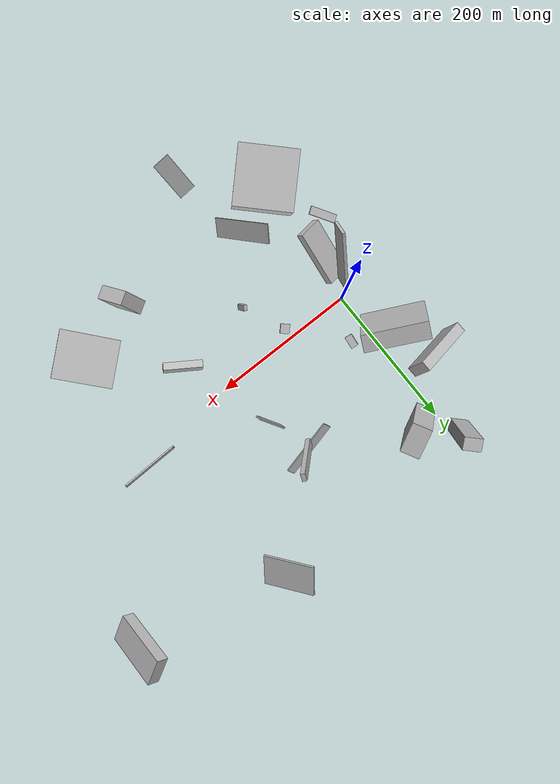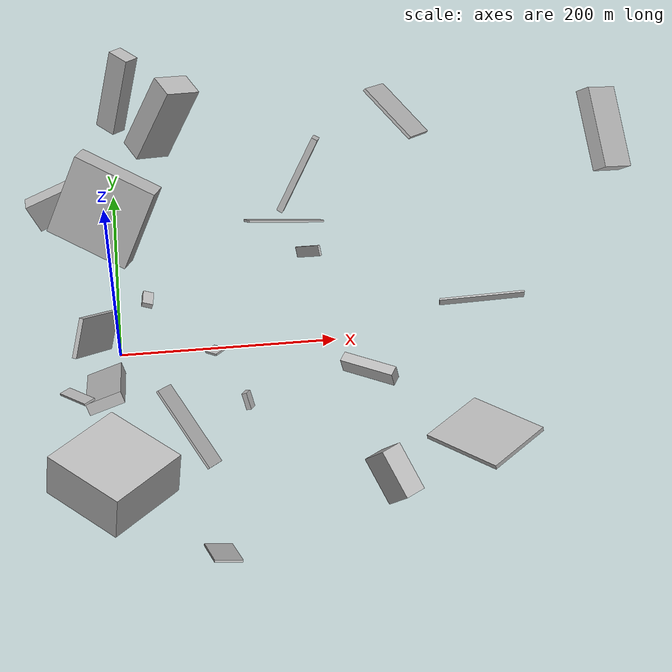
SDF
<sdf version="1.6">
 <world name="default">
  <scene>
   <sky><clouds><speed>12</speed></clouds></sky>
   <ambient>0.4 0.4 0.4 1</ambient>
   <background>0.7 0.7 0.7 1</background>
   <shadows>1</shadows>
  </scene>
  <gravity>0 0 -9.8066</gravity>
  <magnetic_field>6e-06 2.3e-05 -4.2e-05</magnetic_field>
  <physics default="0" name="default_physics" type="ode">
   <ode>
    <solver>
     <type>quick</type>
     <iters>10</iters>
     <sor>1.0</sor>
     <use_dynamic_moi_rescaling>0</use_dynamic_moi_rescaling>
    </solver>
    <constraints>
     <cfm>0</cfm>
     <erp>0.2</erp>
     <contact_max_correcting_vel>100</contact_max_correcting_vel>
     <contact_surface_layer>0.001</contact_surface_layer>
    </constraints>
   </ode>
   <max_step_size>0.004</max_step_size>
   <real_time_factor>1</real_time_factor>
   <real_time_update_rate>250</real_time_update_rate>
  </physics>
  <light name="sun" type="directional">
   <pose>0 0 10 0 0 0</pose>
   <diffuse>0.8 0.8 0.8 1</diffuse>
   <specular>0.2 0.2 0.2 1</specular>
   <attenuation>
    <range>1000</range>
    <constant>0.9</constant>
    <linear>0.01</linear>
    <quadratic>0.001</quadratic>
   </attenuation>
   <direction>-0.5 0.1 -0.9</direction>
  </light>
  <model name="building_1">
   <static>0</static>
   <pose>78.65801326372693 -169.17218586380972 50.6904636482265 -0.8711515495561991 -0.7050113568871207 0.10035059836993936</pose>
   <link name="link">
    <gravity>0</gravity>
    <pose>0 0 40.0 0 0 0</pose>
    <collision name="collision"><geometry><box><size>2 26 80</size></box></geometry></collision>
    <visual name="visual">
     <cast_shadows>0</cast_shadows>
     <geometry><box><size>2 26 80</size></box></geometry>
     <material>
      <script>
       <uri>model://HANNAS_wall/materials/scripts</uri>
       <uri>model://HANNAS_wall/materials/textures</uri>
       <name>vrc/HANNAS_wall</name>
      </script>
     </material>
    </visual>
   </link>
  </model>
  <model name="building_2">
   <static>0</static>
   <pose>36.52205086778163 186.53792571873726 78.1229824556456 0.45348529236519997 -0.08295351557890565 2.0566493371044263</pose>
   <link name="link">
    <gravity>0</gravity>
    <pose>0 0 40.0 0 0 0</pose>
    <collision name="collision"><geometry><box><size>24 38 80</size></box></geometry></collision>
    <visual name="visual">
     <cast_shadows>0</cast_shadows>
     <geometry><box><size>24 38 80</size></box></geometry>
     <material>
      <script>
       <uri>model://HANNAS_wall/materials/scripts</uri>
       <uri>model://HANNAS_wall/materials/textures</uri>
       <name>vrc/HANNAS_wall</name>
      </script>
     </material>
    </visual>
   </link>
  </model>
  <model name="building_3">
   <static>0</static>
   <pose>466.52928779418426 184.04018237341032 65.24518798850019 -2.185434489128819 0.5783529765590155 -1.4305883943112772</pose>
   <link name="link">
    <gravity>0</gravity>
    <pose>0 0 19.5 0 0 0</pose>
    <collision name="collision"><geometry><box><size>80 16 39</size></box></geometry></collision>
    <visual name="visual">
     <cast_shadows>0</cast_shadows>
     <geometry><box><size>80 16 39</size></box></geometry>
     <material>
      <script>
       <uri>model://HANNAS_wall/materials/scripts</uri>
       <uri>model://HANNAS_wall/materials/textures</uri>
       <name>vrc/HANNAS_wall</name>
      </script>
     </material>
    </visual>
   </link>
  </model>
  <model name="building_4">
   <static>0</static>
   <pose>-22.398453831123536 -45.6673128910353 63.45333462088465 -0.7401797261868652 -0.05834298420294319 -0.44885966041642716</pose>
   <link name="link">
    <gravity>0</gravity>
    <pose>0 0 18.0 0 0 0</pose>
    <collision name="collision"><geometry><box><size>4 80 36</size></box></geometry></collision>
    <visual name="visual">
     <cast_shadows>0</cast_shadows>
     <geometry><box><size>4 80 36</size></box></geometry>
     <material>
      <script>
       <uri>model://HANNAS_wall/materials/scripts</uri>
       <uri>model://HANNAS_wall/materials/textures</uri>
       <name>vrc/HANNAS_wall</name>
      </script>
     </material>
    </visual>
   </link>
  </model>
  <model name="building_5">
   <static>0</static>
   <pose>224.7429341800806 -160.07684212478478 39.15332948117189 2.1596383741854264 0.0589436808369255 0.5515207498890417</pose>
   <link name="link">
    <gravity>0</gravity>
    <pose>0 0 22.5 0 0 0</pose>
    <collision name="collision"><geometry><box><size>19 39 45</size></box></geometry></collision>
    <visual name="visual">
     <cast_shadows>0</cast_shadows>
     <geometry><box><size>19 39 45</size></box></geometry>
     <material>
      <script>
       <uri>model://HANNAS_wall/materials/scripts</uri>
       <uri>model://HANNAS_wall/materials/textures</uri>
       <name>vrc/HANNAS_wall</name>
      </script>
     </material>
    </visual>
   </link>
  </model>
  <model name="building_6">
   <static>0</static>
   <pose>378.99833104132136 21.124937877878974 20.511180200648063 1.5847260941836225 -1.404415515957115 -1.5566382732023007</pose>
   <link name="link">
    <gravity>0</gravity>
    <pose>0 0 40.0 0 0 0</pose>
    <collision name="collision"><geometry><box><size>9 2 80</size></box></geometry></collision>
    <visual name="visual">
     <cast_shadows>0</cast_shadows>
     <geometry><box><size>9 2 80</size></box></geometry>
     <material>
      <script>
       <uri>model://HANNAS_wall/materials/scripts</uri>
       <uri>model://HANNAS_wall/materials/textures</uri>
       <name>vrc/HANNAS_wall</name>
      </script>
     </material>
    </visual>
   </link>
  </model>
  <model name="building_7">
   <static>0</static>
   <pose>-35.53584545873676 -204.90873637553713 69.6181568404258 2.8779894703337416 -1.3434752725895014 1.0612239211213672</pose>
   <link name="link">
    <gravity>0</gravity>
    <pose>0 0 40.0 0 0 0</pose>
    <collision name="collision"><geometry><box><size>41 80 80</size></box></geometry></collision>
    <visual name="visual">
     <cast_shadows>0</cast_shadows>
     <geometry><box><size>41 80 80</size></box></geometry>
     <material>
      <script>
       <uri>model://HANNAS_wall/materials/scripts</uri>
       <uri>model://HANNAS_wall/materials/textures</uri>
       <name>vrc/HANNAS_wall</name>
      </script>
     </material>
    </visual>
   </link>
  </model>
  <model name="building_8">
   <static>0</static>
   <pose>293.1520866593309 251.65880309796069 43.46210689776356 0.9459045328652802 0.3626942719207734 -0.8699671119621105</pose>
   <link name="link">
    <gravity>0</gravity>
    <pose>0 0 22.0 0 0 0</pose>
    <collision name="collision"><geometry><box><size>66 3 44</size></box></geometry></collision>
    <visual name="visual">
     <cast_shadows>0</cast_shadows>
     <geometry><box><size>66 3 44</size></box></geometry>
     <material>
      <script>
       <uri>model://HANNAS_wall/materials/scripts</uri>
       <uri>model://HANNAS_wall/materials/textures</uri>
       <name>vrc/HANNAS_wall</name>
      </script>
     </material>
    </visual>
   </link>
  </model>
  <model name="building_9">
   <static>0</static>
   <pose>18.159643952959545 236.4106652243388 111.2023264764783 -0.03771227066508393 -1.2251597872295934 0.8170288547912316</pose>
   <link name="link">
    <gravity>0</gravity>
    <pose>0 0 8.0 0 0 0</pose>
    <collision name="collision"><geometry><box><size>80 22 16</size></box></geometry></collision>
    <visual name="visual">
     <cast_shadows>0</cast_shadows>
     <geometry><box><size>80 22 16</size></box></geometry>
     <material>
      <script>
       <uri>model://HANNAS_wall/materials/scripts</uri>
       <uri>model://HANNAS_wall/materials/textures</uri>
       <name>vrc/HANNAS_wall</name>
      </script>
     </material>
    </visual>
   </link>
  </model>
  <model name="building_10">
   <static>0</static>
   <pose>-30.288903416926054 129.60672442888594 62.47934887165902 -0.37518887593392647 0.1851344763983517 1.6457194667454347</pose>
   <link name="link">
    <gravity>0</gravity>
    <pose>0 0 15.5 0 0 0</pose>
    <collision name="collision"><geometry><box><size>14 80 31</size></box></geometry></collision>
    <visual name="visual">
     <cast_shadows>0</cast_shadows>
     <geometry><box><size>14 80 31</size></box></geometry>
     <material>
      <script>
       <uri>model://HANNAS_wall/materials/scripts</uri>
       <uri>model://HANNAS_wall/materials/textures</uri>
       <name>vrc/HANNAS_wall</name>
      </script>
     </material>
    </visual>
   </link>
  </model>
  <model name="building_11">
   <static>0</static>
   <pose>87.33584524398341 -14.108506737682173 13.431627969161735 0.31666289935278036 -0.239545437743842 -2.3371696861783553</pose>
   <link name="link">
    <gravity>0</gravity>
    <pose>0 0 1.0 0 0 0</pose>
    <collision name="collision"><geometry><box><size>13 13 2</size></box></geometry></collision>
    <visual name="visual">
     <cast_shadows>0</cast_shadows>
     <geometry><box><size>13 13 2</size></box></geometry>
     <material>
      <script>
       <uri>model://HANNAS_wall/materials/scripts</uri>
       <uri>model://HANNAS_wall/materials/textures</uri>
       <name>vrc/HANNAS_wall</name>
      </script>
     </material>
    </visual>
   </link>
  </model>
  <model name="building_12">
   <static>0</static>
   <pose>76.13807383490673 -236.84650320667373 29.467729759542898 0.2587386523171283 -0.8270774998869088 1.4047646393750781</pose>
   <link name="link">
    <gravity>0</gravity>
    <pose>0 0 28.5 0 0 0</pose>
    <collision name="collision"><geometry><box><size>2 24 57</size></box></geometry></collision>
    <visual name="visual">
     <cast_shadows>0</cast_shadows>
     <geometry><box><size>2 24 57</size></box></geometry>
     <material>
      <script>
       <uri>model://HANNAS_wall/materials/scripts</uri>
       <uri>model://HANNAS_wall/materials/textures</uri>
       <name>vrc/HANNAS_wall</name>
      </script>
     </material>
    </visual>
   </link>
  </model>
  <model name="building_13">
   <static>0</static>
   <pose>23.22307499309029 55.03543148553567 14.547033697019032 1.8713288514629232 0.1594106703862756 1.4855091765814745</pose>
   <link name="link">
    <gravity>0</gravity>
    <pose>0 0 5.0 0 0 0</pose>
    <collision name="collision"><geometry><box><size>17 5 10</size></box></geometry></collision>
    <visual name="visual">
     <cast_shadows>0</cast_shadows>
     <geometry><box><size>17 5 10</size></box></geometry>
     <material>
      <script>
       <uri>model://HANNAS_wall/materials/scripts</uri>
       <uri>model://HANNAS_wall/materials/textures</uri>
       <name>vrc/HANNAS_wall</name>
      </script>
     </material>
    </visual>
   </link>
  </model>
  <model name="building_14">
   <static>0</static>
   <pose>-32.317670842976625 -90.60316623389616 63.67422825688607 -1.4429183649327006 0.4382524621681422 2.275446724409006</pose>
   <link name="link">
    <gravity>0</gravity>
    <pose>0 0 5.5 0 0 0</pose>
    <collision name="collision"><geometry><box><size>38 2 11</size></box></geometry></collision>
    <visual name="visual">
     <cast_shadows>0</cast_shadows>
     <geometry><box><size>38 2 11</size></box></geometry>
     <material>
      <script>
       <uri>model://HANNAS_wall/materials/scripts</uri>
       <uri>model://HANNAS_wall/materials/textures</uri>
       <name>vrc/HANNAS_wall</name>
      </script>
     </material>
    </visual>
   </link>
  </model>
  <model name="building_15">
   <static>0</static>
   <pose>111.19699126043943 -71.2181081056361 10.952240900258818 1.0787274546122523 0.41043819349563004 1.0345702952637768</pose>
   <link name="link">
    <gravity>0</gravity>
    <pose>0 0 2.5 0 0 0</pose>
    <collision name="collision"><geometry><box><size>8 16 5</size></box></geometry></collision>
    <visual name="visual">
     <cast_shadows>0</cast_shadows>
     <geometry><box><size>8 16 5</size></box></geometry>
     <material>
      <script>
       <uri>model://HANNAS_wall/materials/scripts</uri>
       <uri>model://HANNAS_wall/materials/textures</uri>
       <name>vrc/HANNAS_wall</name>
      </script>
     </material>
    </visual>
   </link>
  </model>
  <model name="building_16">
   <static>0</static>
   <pose>176.14057534571478 132.95361005097845 83.77830604096607 2.121987187410544 -0.285420575021315 2.658291855740083</pose>
   <link name="link">
    <gravity>0</gravity>
    <pose>0 0 5.5 0 0 0</pose>
    <collision name="collision"><geometry><box><size>6 80 11</size></box></geometry></collision>
    <visual name="visual">
     <cast_shadows>0</cast_shadows>
     <geometry><box><size>6 80 11</size></box></geometry>
     <material>
      <script>
       <uri>model://HANNAS_wall/materials/scripts</uri>
       <uri>model://HANNAS_wall/materials/textures</uri>
       <name>vrc/HANNAS_wall</name>
      </script>
     </material>
    </visual>
   </link>
  </model>
  <model name="building_17">
   <static>0</static>
   <pose>30.33626851425234 59.712280612714935 107.10127552204506 -1.0829143963944563 -1.0425869111243995 0.6499328685676863</pose>
   <link name="link">
    <gravity>0</gravity>
    <pose>0 0 40.0 0 0 0</pose>
    <collision name="collision"><geometry><box><size>80 22 80</size></box></geometry></collision>
    <visual name="visual">
     <cast_shadows>0</cast_shadows>
     <geometry><box><size>80 22 80</size></box></geometry>
     <material>
      <script>
       <uri>model://HANNAS_wall/materials/scripts</uri>
       <uri>model://HANNAS_wall/materials/textures</uri>
       <name>vrc/HANNAS_wall</name>
      </script>
     </material>
    </visual>
   </link>
  </model>
  <model name="building_18">
   <static>0</static>
   <pose>342.90486040742775 -120.77799737686634 25.370582783742123 1.2096243817695957 1.2532284709634331 -1.1998654121280807</pose>
   <link name="link">
    <gravity>0</gravity>
    <pose>0 0 32.5 0 0 0</pose>
    <collision name="collision"><geometry><box><size>4 80 65</size></box></geometry></collision>
    <visual name="visual">
     <cast_shadows>0</cast_shadows>
     <geometry><box><size>4 80 65</size></box></geometry>
     <material>
      <script>
       <uri>model://HANNAS_wall/materials/scripts</uri>
       <uri>model://HANNAS_wall/materials/textures</uri>
       <name>vrc/HANNAS_wall</name>
      </script>
     </material>
    </visual>
   </link>
  </model>
  <model name="building_19">
   <static>0</static>
   <pose>182.231160101028 73.60150433726456 43.01366021922396 1.2663181969884545 0.7769690363544414 -1.3814450892322496</pose>
   <link name="link">
    <gravity>0</gravity>
    <pose>0 0 1.0 0 0 0</pose>
    <collision name="collision"><geometry><box><size>10 45 2</size></box></geometry></collision>
    <visual name="visual">
     <cast_shadows>0</cast_shadows>
     <geometry><box><size>10 45 2</size></box></geometry>
     <material>
      <script>
       <uri>model://HANNAS_wall/materials/scripts</uri>
       <uri>model://HANNAS_wall/materials/textures</uri>
       <name>vrc/HANNAS_wall</name>
      </script>
     </material>
    </visual>
   </link>
  </model>
  <model name="building_20">
   <static>0</static>
   <pose>163.04747429636203 130.7816930530328 25.794813065515996 2.6934837210723086 -0.6331516432249586 -1.0411390787090278</pose>
   <link name="link">
    <gravity>0</gravity>
    <pose>0 0 1.0 0 0 0</pose>
    <collision name="collision"><geometry><box><size>12 80 2</size></box></geometry></collision>
    <visual name="visual">
     <cast_shadows>0</cast_shadows>
     <geometry><box><size>12 80 2</size></box></geometry>
     <material>
      <script>
       <uri>model://HANNAS_wall/materials/scripts</uri>
       <uri>model://HANNAS_wall/materials/textures</uri>
       <name>vrc/HANNAS_wall</name>
      </script>
     </material>
    </visual>
   </link>
  </model>
  <model name="building_21">
   <static>0</static>
   <pose>2.539274105517368 -58.443206244087634 34.890066408148726 1.8782795060469013 -0.572861080862786 -1.5728873585338057</pose>
   <link name="link">
    <gravity>0</gravity>
    <pose>0 0 16.5 0 0 0</pose>
    <collision name="collision"><geometry><box><size>80 11 33</size></box></geometry></collision>
    <visual name="visual">
     <cast_shadows>0</cast_shadows>
     <geometry><box><size>80 11 33</size></box></geometry>
     <material>
      <script>
       <uri>model://HANNAS_wall/materials/scripts</uri>
       <uri>model://HANNAS_wall/materials/textures</uri>
       <name>vrc/HANNAS_wall</name>
      </script>
     </material>
    </visual>
   </link>
  </model>
  <model name="building_22">
   <static>0</static>
   <pose>223.6578842380861 -56.76065396711413 32.22391483888042 -3.029964658087001 -0.14073324310482668 -0.5598853613066113</pose>
   <link name="link">
    <gravity>0</gravity>
    <pose>0 0 8.0 0 0 0</pose>
    <collision name="collision"><geometry><box><size>52 10 16</size></box></geometry></collision>
    <visual name="visual">
     <cast_shadows>0</cast_shadows>
     <geometry><box><size>52 10 16</size></box></geometry>
     <material>
      <script>
       <uri>model://HANNAS_wall/materials/scripts</uri>
       <uri>model://HANNAS_wall/materials/textures</uri>
       <name>vrc/HANNAS_wall</name>
      </script>
     </material>
    </visual>
   </link>
  </model>
 </world>
</sdf>
